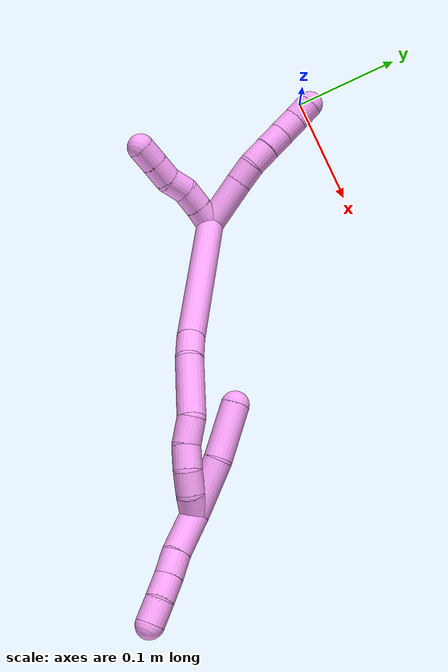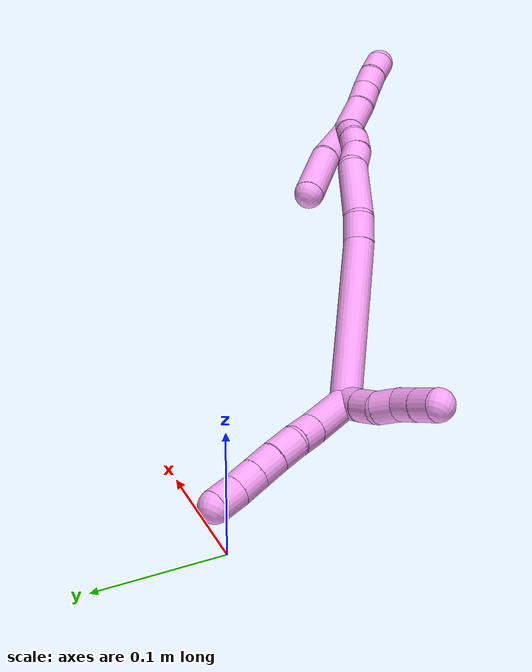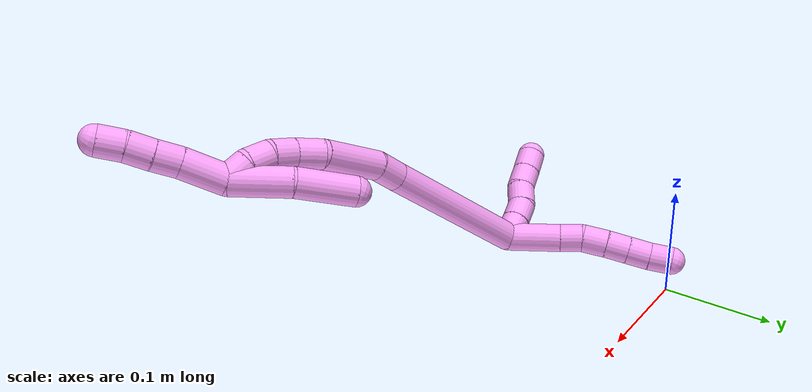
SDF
<sdf version="1.7">
 <world name="default">
  <model name="4">
   <static>0</static>
   <link name="4">
    <collision name="collision-cylinder-e_1_2_8">
     <pose>-0.003821 0.01152 -0.020359 -2.62669 -0.1619 0.597785</pose>
     <geometry><cylinder><radius>0.0125</radius><length>0.047405</length></cylinder></geometry>
     <surface>
      <friction><ode><mu>1.16</mu><mu2>1.16</mu2><slip1>0</slip1><slip2>0</slip2></ode></friction>
      <contact><ode><kp>1e+06</kp><kd>1</kd><max_vel>0</max_vel><min_depth>0.001</min_depth></ode></contact>
     </surface>
    </collision>
    <visual name="visual-cylinder-e_1_2_8">
     <pose>-0.003821 0.01152 -0.020359 -2.62669 -0.1619 0.597785</pose>
     <geometry><cylinder><radius>0.0125</radius><length>0.047405</length></cylinder></geometry>
     <material><ambient>1 0.65098 0.996078 1</ambient></material>
    </visual>
    <collision name="collision-cylinder-e_2_8_9">
     <pose>-0.009279 0.02841 -0.049194 -2.57673 -0.161839 0.545016</pose>
     <geometry><cylinder><radius>0.0125</radius><length>0.020332</length></cylinder></geometry>
     <surface>
      <friction><ode><mu>1.16</mu><mu2>1.16</mu2><slip1>0</slip1><slip2>0</slip2></ode></friction>
      <contact><ode><kp>1e+06</kp><kd>1</kd><max_vel>0</max_vel><min_depth>0.001</min_depth></ode></contact>
     </surface>
    </collision>
    <visual name="visual-cylinder-e_2_8_9">
     <pose>-0.009279 0.02841 -0.049194 -2.57673 -0.161839 0.545016</pose>
     <geometry><cylinder><radius>0.0125</radius><length>0.020332</length></cylinder></geometry>
     <material><ambient>1 0.65098 0.996078 1</ambient></material>
    </visual>
    <collision name="collision-cylinder-e_3_9_10">
     <pose>-0.010387 0.038623 -0.067537 -2.68549 0.048255 -0.207212</pose>
     <geometry><cylinder><radius>0.0125</radius><length>0.02201</length></cylinder></geometry>
     <surface>
      <friction><ode><mu>1.16</mu><mu2>1.16</mu2><slip1>0</slip1><slip2>0</slip2></ode></friction>
      <contact><ode><kp>1e+06</kp><kd>1</kd><max_vel>0</max_vel><min_depth>0.001</min_depth></ode></contact>
     </surface>
    </collision>
    <visual name="visual-cylinder-e_3_9_10">
     <pose>-0.010387 0.038623 -0.067537 -2.68549 0.048255 -0.207212</pose>
     <geometry><cylinder><radius>0.0125</radius><length>0.02201</length></cylinder></geometry>
     <material><ambient>1 0.65098 0.996078 1</ambient></material>
    </visual>
    <collision name="collision-cylinder-e_4_10_11">
     <pose>-0.009099 0.04751 -0.086614 -2.72758 0.075077 -0.353914</pose>
     <geometry><cylinder><radius>0.0125</radius><length>0.020173</length></cylinder></geometry>
     <surface>
      <friction><ode><mu>1.16</mu><mu2>1.16</mu2><slip1>0</slip1><slip2>0</slip2></ode></friction>
      <contact><ode><kp>1e+06</kp><kd>1</kd><max_vel>0</max_vel><min_depth>0.001</min_depth></ode></contact>
     </surface>
    </collision>
    <visual name="visual-cylinder-e_4_10_11">
     <pose>-0.009099 0.04751 -0.086614 -2.72758 0.075077 -0.353914</pose>
     <geometry><cylinder><radius>0.0125</radius><length>0.020173</length></cylinder></geometry>
     <material><ambient>1 0.65098 0.996078 1</ambient></material>
    </visual>
    <collision name="collision-cylinder-e_5_11_12">
     <pose>-0.007609 0.055563 -0.104965 -2.72857 0.073415 -0.347064</pose>
     <geometry><cylinder><radius>0.0125</radius><length>0.020018</length></cylinder></geometry>
     <surface>
      <friction><ode><mu>1.16</mu><mu2>1.16</mu2><slip1>0</slip1><slip2>0</slip2></ode></friction>
      <contact><ode><kp>1e+06</kp><kd>1</kd><max_vel>0</max_vel><min_depth>0.001</min_depth></ode></contact>
     </surface>
    </collision>
    <visual name="visual-cylinder-e_5_11_12">
     <pose>-0.007609 0.055563 -0.104965 -2.72857 0.073415 -0.347064</pose>
     <geometry><cylinder><radius>0.0125</radius><length>0.020018</length></cylinder></geometry>
     <material><ambient>1 0.65098 0.996078 1</ambient></material>
    </visual>
    <collision name="collision-cylinder-e_6_12_6">
     <pose>-0.006685 0.064277 -0.122963 -2.65303 0.018859 -0.075627</pose>
     <geometry><cylinder><radius>0.0125</radius><length>0.020062</length></cylinder></geometry>
     <surface>
      <friction><ode><mu>1.16</mu><mu2>1.16</mu2><slip1>0</slip1><slip2>0</slip2></ode></friction>
      <contact><ode><kp>1e+06</kp><kd>1</kd><max_vel>0</max_vel><min_depth>0.001</min_depth></ode></contact>
     </surface>
    </collision>
    <visual name="visual-cylinder-e_6_12_6">
     <pose>-0.006685 0.064277 -0.122963 -2.65303 0.018859 -0.075627</pose>
     <geometry><cylinder><radius>0.0125</radius><length>0.020062</length></cylinder></geometry>
     <material><ambient>1 0.65098 0.996078 1</ambient></material>
    </visual>
    <collision name="collision-cylinder-e_1_2_13">
     <pose>-0.00965 -0.000773 -0.002508 2.8425 -1.30529 -2.75236</pose>
     <geometry><cylinder><radius>0.0125</radius><length>0.02</length></cylinder></geometry>
     <surface>
      <friction><ode><mu>1.16</mu><mu2>1.16</mu2><slip1>0</slip1><slip2>0</slip2></ode></friction>
      <contact><ode><kp>1e+06</kp><kd>1</kd><max_vel>0</max_vel><min_depth>0.001</min_depth></ode></contact>
     </surface>
    </collision>
    <visual name="visual-cylinder-e_1_2_13">
     <pose>-0.00965 -0.000773 -0.002508 2.8425 -1.30529 -2.75236</pose>
     <geometry><cylinder><radius>0.0125</radius><length>0.02</length></cylinder></geometry>
     <material><ambient>1 0.65098 0.996078 1</ambient></material>
    </visual>
    <collision name="collision-cylinder-e_2_13_14">
     <pose>-0.029075 -0.002472 -0.006906 2.68636 -1.35869 -2.58295</pose>
     <geometry><cylinder><radius>0.0125</radius><length>0.02</length></cylinder></geometry>
     <surface>
      <friction><ode><mu>1.16</mu><mu2>1.16</mu2><slip1>0</slip1><slip2>0</slip2></ode></friction>
      <contact><ode><kp>1e+06</kp><kd>1</kd><max_vel>0</max_vel><min_depth>0.001</min_depth></ode></contact>
     </surface>
    </collision>
    <visual name="visual-cylinder-e_2_13_14">
     <pose>-0.029075 -0.002472 -0.006906 2.68636 -1.35869 -2.58295</pose>
     <geometry><cylinder><radius>0.0125</radius><length>0.02</length></cylinder></geometry>
     <material><ambient>1 0.65098 0.996078 1</ambient></material>
    </visual>
    <collision name="collision-cylinder-e_3_14_15">
     <pose>-0.048539 -0.005461 -0.007423 0.983259 -1.32032 -0.787984</pose>
     <geometry><cylinder><radius>0.0125</radius><length>0.02</length></cylinder></geometry>
     <surface>
      <friction><ode><mu>1.16</mu><mu2>1.16</mu2><slip1>0</slip1><slip2>0</slip2></ode></friction>
      <contact><ode><kp>1e+06</kp><kd>1</kd><max_vel>0</max_vel><min_depth>0.001</min_depth></ode></contact>
     </surface>
    </collision>
    <visual name="visual-cylinder-e_3_14_15">
     <pose>-0.048539 -0.005461 -0.007423 0.983259 -1.32032 -0.787984</pose>
     <geometry><cylinder><radius>0.0125</radius><length>0.02</length></cylinder></geometry>
     <material><ambient>1 0.65098 0.996078 1</ambient></material>
    </visual>
    <collision name="collision-cylinder-e_4_15_16">
     <pose>-0.068116 -0.008151 -0.007393 2.70469 -1.4219 -2.63702</pose>
     <geometry><cylinder><radius>0.0125</radius><length>0.02</length></cylinder></geometry>
     <surface>
      <friction><ode><mu>1.16</mu><mu2>1.16</mu2><slip1>0</slip1><slip2>0</slip2></ode></friction>
      <contact><ode><kp>1e+06</kp><kd>1</kd><max_vel>0</max_vel><min_depth>0.001</min_depth></ode></contact>
     </surface>
    </collision>
    <visual name="visual-cylinder-e_4_15_16">
     <pose>-0.068116 -0.008151 -0.007393 2.70469 -1.4219 -2.63702</pose>
     <geometry><cylinder><radius>0.0125</radius><length>0.02</length></cylinder></geometry>
     <material><ambient>1 0.65098 0.996078 1</ambient></material>
    </visual>
    <collision name="collision-cylinder-e_5_16_5">
     <pose>-0.087924 -0.009346 -0.009879 2.68105 -1.44293 -2.6207</pose>
     <geometry><cylinder><radius>0.0125</radius><length>0.02</length></cylinder></geometry>
     <surface>
      <friction><ode><mu>1.16</mu><mu2>1.16</mu2><slip1>0</slip1><slip2>0</slip2></ode></friction>
      <contact><ode><kp>1e+06</kp><kd>1</kd><max_vel>0</max_vel><min_depth>0.001</min_depth></ode></contact>
     </surface>
    </collision>
    <visual name="visual-cylinder-e_5_16_5">
     <pose>-0.087924 -0.009346 -0.009879 2.68105 -1.44293 -2.6207</pose>
     <geometry><cylinder><radius>0.0125</radius><length>0.02</length></cylinder></geometry>
     <material><ambient>1 0.65098 0.996078 1</ambient></material>
    </visual>
    <collision name="collision-cylinder-e_1_2_17">
     <pose>0.00623 0.019172 0.065149 -0.286197 0.091485 -0.01319</pose>
     <geometry><cylinder><radius>0.0125</radius><length>0.136393</length></cylinder></geometry>
     <surface>
      <friction><ode><mu>1.16</mu><mu2>1.16</mu2><slip1>0</slip1><slip2>0</slip2></ode></friction>
      <contact><ode><kp>1e+06</kp><kd>1</kd><max_vel>0</max_vel><min_depth>0.001</min_depth></ode></contact>
     </surface>
    </collision>
    <visual name="visual-cylinder-e_1_2_17">
     <pose>0.00623 0.019172 0.065149 -0.286197 0.091485 -0.01319</pose>
     <geometry><cylinder><radius>0.0125</radius><length>0.136393</length></cylinder></geometry>
     <material><ambient>1 0.65098 0.996078 1</ambient></material>
    </visual>
    <collision name="collision-cylinder-e_2_17_18">
     <pose>0.013899 0.042532 0.141081 -0.370465 0.123673 -0.023202</pose>
     <geometry><cylinder><radius>0.0125</radius><length>0.023314</length></cylinder></geometry>
     <surface>
      <friction><ode><mu>1.16</mu><mu2>1.16</mu2><slip1>0</slip1><slip2>0</slip2></ode></friction>
      <contact><ode><kp>1e+06</kp><kd>1</kd><max_vel>0</max_vel><min_depth>0.001</min_depth></ode></contact>
     </surface>
    </collision>
    <visual name="visual-cylinder-e_2_17_18">
     <pose>0.013899 0.042532 0.141081 -0.370465 0.123673 -0.023202</pose>
     <geometry><cylinder><radius>0.0125</radius><length>0.023314</length></cylinder></geometry>
     <material><ambient>1 0.65098 0.996078 1</ambient></material>
    </visual>
    <collision name="collision-cylinder-e_3_18_19">
     <pose>0.024877 0.053756 0.176737 -0.27567 0.353605 -0.049558</pose>
     <geometry><cylinder><radius>0.0125</radius><length>0.055105</length></cylinder></geometry>
     <surface>
      <friction><ode><mu>1.16</mu><mu2>1.16</mu2><slip1>0</slip1><slip2>0</slip2></ode></friction>
      <contact><ode><kp>1e+06</kp><kd>1</kd><max_vel>0</max_vel><min_depth>0.001</min_depth></ode></contact>
     </surface>
    </collision>
    <visual name="visual-cylinder-e_3_18_19">
     <pose>0.024877 0.053756 0.176737 -0.27567 0.353605 -0.049558</pose>
     <geometry><cylinder><radius>0.0125</radius><length>0.055105</length></cylinder></geometry>
     <material><ambient>1 0.65098 0.996078 1</ambient></material>
    </visual>
    <collision name="collision-cylinder-e_4_19_20">
     <pose>0.038851 0.059816 0.2126 0.088489 0.381965 0.017119</pose>
     <geometry><cylinder><radius>0.0125</radius><length>0.023783</length></cylinder></geometry>
     <surface>
      <friction><ode><mu>1.16</mu><mu2>1.16</mu2><slip1>0</slip1><slip2>0</slip2></ode></friction>
      <contact><ode><kp>1e+06</kp><kd>1</kd><max_vel>0</max_vel><min_depth>0.001</min_depth></ode></contact>
     </surface>
    </collision>
    <visual name="visual-cylinder-e_4_19_20">
     <pose>0.038851 0.059816 0.2126 0.088489 0.381965 0.017119</pose>
     <geometry><cylinder><radius>0.0125</radius><length>0.023783</length></cylinder></geometry>
     <material><ambient>1 0.65098 0.996078 1</ambient></material>
    </visual>
    <collision name="collision-cylinder-e_5_20_21">
     <pose>0.048791 0.059925 0.232522 -0.120859 0.54934 -0.034095</pose>
     <geometry><cylinder><radius>0.0125</radius><length>0.021095</length></cylinder></geometry>
     <surface>
      <friction><ode><mu>1.16</mu><mu2>1.16</mu2><slip1>0</slip1><slip2>0</slip2></ode></friction>
      <contact><ode><kp>1e+06</kp><kd>1</kd><max_vel>0</max_vel><min_depth>0.001</min_depth></ode></contact>
     </surface>
    </collision>
    <visual name="visual-cylinder-e_5_20_21">
     <pose>0.048791 0.059925 0.232522 -0.120859 0.54934 -0.034095</pose>
     <geometry><cylinder><radius>0.0125</radius><length>0.021095</length></cylinder></geometry>
     <material><ambient>1 0.65098 0.996078 1</ambient></material>
    </visual>
    <collision name="collision-cylinder-e_6_21_22">
     <pose>0.06141 0.060275 0.248469 0.104334 0.78942 0.043495</pose>
     <geometry><cylinder><radius>0.0125</radius><length>0.020037</length></cylinder></geometry>
     <surface>
      <friction><ode><mu>1.16</mu><mu2>1.16</mu2><slip1>0</slip1><slip2>0</slip2></ode></friction>
      <contact><ode><kp>1e+06</kp><kd>1</kd><max_vel>0</max_vel><min_depth>0.001</min_depth></ode></contact>
     </surface>
    </collision>
    <visual name="visual-cylinder-e_6_21_22">
     <pose>0.06141 0.060275 0.248469 0.104334 0.78942 0.043495</pose>
     <geometry><cylinder><radius>0.0125</radius><length>0.020037</length></cylinder></geometry>
     <material><ambient>1 0.65098 0.996078 1</ambient></material>
    </visual>
    <collision name="collision-cylinder-e_7_22_1">
     <pose>0.077086 0.056988 0.260272 0.490051 1.00617 0.273496</pose>
     <geometry><cylinder><radius>0.0125</radius><length>0.020272</length></cylinder></geometry>
     <surface>
      <friction><ode><mu>1.16</mu><mu2>1.16</mu2><slip1>0</slip1><slip2>0</slip2></ode></friction>
      <contact><ode><kp>1e+06</kp><kd>1</kd><max_vel>0</max_vel><min_depth>0.001</min_depth></ode></contact>
     </surface>
    </collision>
    <visual name="visual-cylinder-e_7_22_1">
     <pose>0.077086 0.056988 0.260272 0.490051 1.00617 0.273496</pose>
     <geometry><cylinder><radius>0.0125</radius><length>0.020272</length></cylinder></geometry>
     <material><ambient>1 0.65098 0.996078 1</ambient></material>
    </visual>
    <collision name="collision-cylinder-e_1_1_23">
     <pose>0.085988 0.053633 0.283619 0.043183 0.01827 0.000395</pose>
     <geometry><cylinder><radius>0.0125</radius><length>0.037165</length></cylinder></geometry>
     <surface>
      <friction><ode><mu>1.16</mu><mu2>1.16</mu2><slip1>0</slip1><slip2>0</slip2></ode></friction>
      <contact><ode><kp>1e+06</kp><kd>1</kd><max_vel>0</max_vel><min_depth>0.001</min_depth></ode></contact>
     </surface>
    </collision>
    <visual name="visual-cylinder-e_1_1_23">
     <pose>0.085988 0.053633 0.283619 0.043183 0.01827 0.000395</pose>
     <geometry><cylinder><radius>0.0125</radius><length>0.037165</length></cylinder></geometry>
     <material><ambient>1 0.65098 0.996078 1</ambient></material>
    </visual>
    <collision name="collision-cylinder-e_2_23_24">
     <pose>0.087925 0.05284 0.312552 -0.000946 0.152795 -7.2e-05</pose>
     <geometry><cylinder><radius>0.0125</radius><length>0.020985</length></cylinder></geometry>
     <surface>
      <friction><ode><mu>1.16</mu><mu2>1.16</mu2><slip1>0</slip1><slip2>0</slip2></ode></friction>
      <contact><ode><kp>1e+06</kp><kd>1</kd><max_vel>0</max_vel><min_depth>0.001</min_depth></ode></contact>
     </surface>
    </collision>
    <visual name="visual-cylinder-e_2_23_24">
     <pose>0.087925 0.05284 0.312552 -0.000946 0.152795 -7.2e-05</pose>
     <geometry><cylinder><radius>0.0125</radius><length>0.020985</length></cylinder></geometry>
     <material><ambient>1 0.65098 0.996078 1</ambient></material>
    </visual>
    <collision name="collision-cylinder-e_3_24_25">
     <pose>0.090438 0.052695 0.333183 0.015151 0.089034 0.000675</pose>
     <geometry><cylinder><radius>0.0125</radius><length>0.020605</length></cylinder></geometry>
     <surface>
      <friction><ode><mu>1.16</mu><mu2>1.16</mu2><slip1>0</slip1><slip2>0</slip2></ode></friction>
      <contact><ode><kp>1e+06</kp><kd>1</kd><max_vel>0</max_vel><min_depth>0.001</min_depth></ode></contact>
     </surface>
    </collision>
    <visual name="visual-cylinder-e_3_24_25">
     <pose>0.090438 0.052695 0.333183 0.015151 0.089034 0.000675</pose>
     <geometry><cylinder><radius>0.0125</radius><length>0.020605</length></cylinder></geometry>
     <material><ambient>1 0.65098 0.996078 1</ambient></material>
    </visual>
    <collision name="collision-cylinder-e_4_25_4">
     <pose>0.093188 0.051083 0.353804 0.139682 0.173521 0.012169</pose>
     <geometry><cylinder><radius>0.0125</radius><length>0.021245</length></cylinder></geometry>
     <surface>
      <friction><ode><mu>1.16</mu><mu2>1.16</mu2><slip1>0</slip1><slip2>0</slip2></ode></friction>
      <contact><ode><kp>1e+06</kp><kd>1</kd><max_vel>0</max_vel><min_depth>0.001</min_depth></ode></contact>
     </surface>
    </collision>
    <visual name="visual-cylinder-e_4_25_4">
     <pose>0.093188 0.051083 0.353804 0.139682 0.173521 0.012169</pose>
     <geometry><cylinder><radius>0.0125</radius><length>0.021245</length></cylinder></geometry>
     <material><ambient>1 0.65098 0.996078 1</ambient></material>
    </visual>
    <collision name="collision-cylinder-e_1_1_26">
     <pose>0.079029 0.061797 0.242123 -2.83097 -0.268214 1.42247</pose>
     <geometry><cylinder><radius>0.0125</radius><length>0.049959</length></cylinder></geometry>
     <surface>
      <friction><ode><mu>1.16</mu><mu2>1.16</mu2><slip1>0</slip1><slip2>0</slip2></ode></friction>
      <contact><ode><kp>1e+06</kp><kd>1</kd><max_vel>0</max_vel><min_depth>0.001</min_depth></ode></contact>
     </surface>
    </collision>
    <visual name="visual-cylinder-e_1_1_26">
     <pose>0.079029 0.061797 0.242123 -2.83097 -0.268214 1.42247</pose>
     <geometry><cylinder><radius>0.0125</radius><length>0.049959</length></cylinder></geometry>
     <material><ambient>1 0.65098 0.996078 1</ambient></material>
    </visual>
    <collision name="collision-cylinder-e_2_26_3">
     <pose>0.06647 0.071629 0.19501 -3.03979 -0.23967 2.3411</pose>
     <geometry><cylinder><radius>0.0125</radius><length>0.050041</length></cylinder></geometry>
     <surface>
      <friction><ode><mu>1.16</mu><mu2>1.16</mu2><slip1>0</slip1><slip2>0</slip2></ode></friction>
      <contact><ode><kp>1e+06</kp><kd>1</kd><max_vel>0</max_vel><min_depth>0.001</min_depth></ode></contact>
     </surface>
    </collision>
    <visual name="visual-cylinder-e_2_26_3">
     <pose>0.06647 0.071629 0.19501 -3.03979 -0.23967 2.3411</pose>
     <geometry><cylinder><radius>0.0125</radius><length>0.050041</length></cylinder></geometry>
     <material><ambient>1 0.65098 0.996078 1</ambient></material>
    </visual>
    <collision name="collision-sphere-3">
     <pose>0.06053 0.074099 0.170831 0 -0 0</pose>
     <geometry><sphere><radius>0.0125</radius></sphere></geometry>
     <surface>
      <friction><ode><mu>1.16</mu><mu2>1.16</mu2><slip1>0</slip1><slip2>0</slip2></ode></friction>
      <contact><ode><kp>1e+06</kp><kd>1</kd><max_vel>0</max_vel><min_depth>0.001</min_depth></ode></contact>
     </surface>
    </collision>
    <visual name="visual-sphere-3">
     <pose>0.06053 0.074099 0.170831 0 -0 0</pose>
     <geometry><sphere><radius>0.0125</radius></sphere></geometry>
     <material><ambient>1 0.65098 0.996078 1</ambient></material>
    </visual>
    <collision name="collision-sphere-26">
     <pose>0.072409 0.069159 0.219189 0 -0 0</pose>
     <geometry><sphere><radius>0.0125</radius></sphere></geometry>
     <surface>
      <friction><ode><mu>1.16</mu><mu2>1.16</mu2><slip1>0</slip1><slip2>0</slip2></ode></friction>
      <contact><ode><kp>1e+06</kp><kd>1</kd><max_vel>0</max_vel><min_depth>0.001</min_depth></ode></contact>
     </surface>
    </collision>
    <visual name="visual-sphere-26">
     <pose>0.072409 0.069159 0.219189 0 -0 0</pose>
     <geometry><sphere><radius>0.0125</radius></sphere></geometry>
     <material><ambient>1 0.65098 0.996078 1</ambient></material>
    </visual>
    <collision name="collision-sphere-4">
     <pose>0.095022 0.049626 0.364165 0 -0 0</pose>
     <geometry><sphere><radius>0.0125</radius></sphere></geometry>
     <surface>
      <friction><ode><mu>1.16</mu><mu2>1.16</mu2><slip1>0</slip1><slip2>0</slip2></ode></friction>
      <contact><ode><kp>1e+06</kp><kd>1</kd><max_vel>0</max_vel><min_depth>0.001</min_depth></ode></contact>
     </surface>
    </collision>
    <visual name="visual-sphere-4">
     <pose>0.095022 0.049626 0.364165 0 -0 0</pose>
     <geometry><sphere><radius>0.0125</radius></sphere></geometry>
     <material><ambient>1 0.65098 0.996078 1</ambient></material>
    </visual>
    <collision name="collision-sphere-25">
     <pose>0.091354 0.052539 0.343443 0 -0 0</pose>
     <geometry><sphere><radius>0.0125</radius></sphere></geometry>
     <surface>
      <friction><ode><mu>1.16</mu><mu2>1.16</mu2><slip1>0</slip1><slip2>0</slip2></ode></friction>
      <contact><ode><kp>1e+06</kp><kd>1</kd><max_vel>0</max_vel><min_depth>0.001</min_depth></ode></contact>
     </surface>
    </collision>
    <visual name="visual-sphere-25">
     <pose>0.091354 0.052539 0.343443 0 -0 0</pose>
     <geometry><sphere><radius>0.0125</radius></sphere></geometry>
     <material><ambient>1 0.65098 0.996078 1</ambient></material>
    </visual>
    <collision name="collision-sphere-24">
     <pose>0.089522 0.05285 0.322922 0 -0 0</pose>
     <geometry><sphere><radius>0.0125</radius></sphere></geometry>
     <surface>
      <friction><ode><mu>1.16</mu><mu2>1.16</mu2><slip1>0</slip1><slip2>0</slip2></ode></friction>
      <contact><ode><kp>1e+06</kp><kd>1</kd><max_vel>0</max_vel><min_depth>0.001</min_depth></ode></contact>
     </surface>
    </collision>
    <visual name="visual-sphere-24">
     <pose>0.089522 0.05285 0.322922 0 -0 0</pose>
     <geometry><sphere><radius>0.0125</radius></sphere></geometry>
     <material><ambient>1 0.65098 0.996078 1</ambient></material>
    </visual>
    <collision name="collision-sphere-23">
     <pose>0.086328 0.052831 0.302181 0 -0 0</pose>
     <geometry><sphere><radius>0.0125</radius></sphere></geometry>
     <surface>
      <friction><ode><mu>1.16</mu><mu2>1.16</mu2><slip1>0</slip1><slip2>0</slip2></ode></friction>
      <contact><ode><kp>1e+06</kp><kd>1</kd><max_vel>0</max_vel><min_depth>0.001</min_depth></ode></contact>
     </surface>
    </collision>
    <visual name="visual-sphere-23">
     <pose>0.086328 0.052831 0.302181 0 -0 0</pose>
     <geometry><sphere><radius>0.0125</radius></sphere></geometry>
     <material><ambient>1 0.65098 0.996078 1</ambient></material>
    </visual>
    <collision name="collision-sphere-1">
     <pose>0.085649 0.054435 0.265057 0 -0 0</pose>
     <geometry><sphere><radius>0.0125</radius></sphere></geometry>
     <surface>
      <friction><ode><mu>1.16</mu><mu2>1.16</mu2><slip1>0</slip1><slip2>0</slip2></ode></friction>
      <contact><ode><kp>1e+06</kp><kd>1</kd><max_vel>0</max_vel><min_depth>0.001</min_depth></ode></contact>
     </surface>
    </collision>
    <visual name="visual-sphere-1">
     <pose>0.085649 0.054435 0.265057 0 -0 0</pose>
     <geometry><sphere><radius>0.0125</radius></sphere></geometry>
     <material><ambient>1 0.65098 0.996078 1</ambient></material>
    </visual>
    <collision name="collision-sphere-22">
     <pose>0.068523 0.05954 0.255486 0 -0 0</pose>
     <geometry><sphere><radius>0.0125</radius></sphere></geometry>
     <surface>
      <friction><ode><mu>1.16</mu><mu2>1.16</mu2><slip1>0</slip1><slip2>0</slip2></ode></friction>
      <contact><ode><kp>1e+06</kp><kd>1</kd><max_vel>0</max_vel><min_depth>0.001</min_depth></ode></contact>
     </surface>
    </collision>
    <visual name="visual-sphere-22">
     <pose>0.068523 0.05954 0.255486 0 -0 0</pose>
     <geometry><sphere><radius>0.0125</radius></sphere></geometry>
     <material><ambient>1 0.65098 0.996078 1</ambient></material>
    </visual>
    <collision name="collision-sphere-21">
     <pose>0.054298 0.06101 0.241452 0 -0 0</pose>
     <geometry><sphere><radius>0.0125</radius></sphere></geometry>
     <surface>
      <friction><ode><mu>1.16</mu><mu2>1.16</mu2><slip1>0</slip1><slip2>0</slip2></ode></friction>
      <contact><ode><kp>1e+06</kp><kd>1</kd><max_vel>0</max_vel><min_depth>0.001</min_depth></ode></contact>
     </surface>
    </collision>
    <visual name="visual-sphere-21">
     <pose>0.054298 0.06101 0.241452 0 -0 0</pose>
     <geometry><sphere><radius>0.0125</radius></sphere></geometry>
     <material><ambient>1 0.65098 0.996078 1</ambient></material>
    </visual>
    <collision name="collision-sphere-12">
     <pose>-0.006874 0.05957 -0.114107 0 -0 0</pose>
     <geometry><sphere><radius>0.0125</radius></sphere></geometry>
     <surface>
      <friction><ode><mu>1.16</mu><mu2>1.16</mu2><slip1>0</slip1><slip2>0</slip2></ode></friction>
      <contact><ode><kp>1e+06</kp><kd>1</kd><max_vel>0</max_vel><min_depth>0.001</min_depth></ode></contact>
     </surface>
    </collision>
    <visual name="visual-sphere-12">
     <pose>-0.006874 0.05957 -0.114107 0 -0 0</pose>
     <geometry><sphere><radius>0.0125</radius></sphere></geometry>
     <material><ambient>1 0.65098 0.996078 1</ambient></material>
    </visual>
    <collision name="collision-sphere-11">
     <pose>-0.008343 0.051556 -0.095822 0 -0 0</pose>
     <geometry><sphere><radius>0.0125</radius></sphere></geometry>
     <surface>
      <friction><ode><mu>1.16</mu><mu2>1.16</mu2><slip1>0</slip1><slip2>0</slip2></ode></friction>
      <contact><ode><kp>1e+06</kp><kd>1</kd><max_vel>0</max_vel><min_depth>0.001</min_depth></ode></contact>
     </surface>
    </collision>
    <visual name="visual-sphere-11">
     <pose>-0.008343 0.051556 -0.095822 0 -0 0</pose>
     <geometry><sphere><radius>0.0125</radius></sphere></geometry>
     <material><ambient>1 0.65098 0.996078 1</ambient></material>
    </visual>
    <collision name="collision-sphere-10">
     <pose>-0.009856 0.043464 -0.077406 0 -0 0</pose>
     <geometry><sphere><radius>0.0125</radius></sphere></geometry>
     <surface>
      <friction><ode><mu>1.16</mu><mu2>1.16</mu2><slip1>0</slip1><slip2>0</slip2></ode></friction>
      <contact><ode><kp>1e+06</kp><kd>1</kd><max_vel>0</max_vel><min_depth>0.001</min_depth></ode></contact>
     </surface>
    </collision>
    <visual name="visual-sphere-10">
     <pose>-0.009856 0.043464 -0.077406 0 -0 0</pose>
     <geometry><sphere><radius>0.0125</radius></sphere></geometry>
     <material><ambient>1 0.65098 0.996078 1</ambient></material>
    </visual>
    <collision name="collision-sphere-9">
     <pose>-0.010918 0.033781 -0.057668 0 -0 0</pose>
     <geometry><sphere><radius>0.0125</radius></sphere></geometry>
     <surface>
      <friction><ode><mu>1.16</mu><mu2>1.16</mu2><slip1>0</slip1><slip2>0</slip2></ode></friction>
      <contact><ode><kp>1e+06</kp><kd>1</kd><max_vel>0</max_vel><min_depth>0.001</min_depth></ode></contact>
     </surface>
    </collision>
    <visual name="visual-sphere-9">
     <pose>-0.010918 0.033781 -0.057668 0 -0 0</pose>
     <geometry><sphere><radius>0.0125</radius></sphere></geometry>
     <material><ambient>1 0.65098 0.996078 1</ambient></material>
    </visual>
    <collision name="collision-sphere-2">
     <geometry><sphere><radius>0.0125</radius></sphere></geometry>
     <surface>
      <friction><ode><mu>1.16</mu><mu2>1.16</mu2><slip1>0</slip1><slip2>0</slip2></ode></friction>
      <contact><ode><kp>1e+06</kp><kd>1</kd><max_vel>0</max_vel><min_depth>0.001</min_depth></ode></contact>
     </surface>
    </collision>
    <visual name="visual-sphere-2">
     <geometry><sphere><radius>0.0125</radius></sphere></geometry>
     <material><ambient>1 0.65098 0.996078 1</ambient></material>
    </visual>
    <collision name="collision-sphere-19">
     <pose>0.034418 0.060791 0.201609 0 -0 0</pose>
     <geometry><sphere><radius>0.0125</radius></sphere></geometry>
     <surface>
      <friction><ode><mu>1.16</mu><mu2>1.16</mu2><slip1>0</slip1><slip2>0</slip2></ode></friction>
      <contact><ode><kp>1e+06</kp><kd>1</kd><max_vel>0</max_vel><min_depth>0.001</min_depth></ode></contact>
     </surface>
    </collision>
    <visual name="visual-sphere-19">
     <pose>0.034418 0.060791 0.201609 0 -0 0</pose>
     <geometry><sphere><radius>0.0125</radius></sphere></geometry>
     <material><ambient>1 0.65098 0.996078 1</ambient></material>
    </visual>
    <collision name="collision-sphere-8">
     <pose>-0.007641 0.023039 -0.040719 0 -0 0</pose>
     <geometry><sphere><radius>0.0125</radius></sphere></geometry>
     <surface>
      <friction><ode><mu>1.16</mu><mu2>1.16</mu2><slip1>0</slip1><slip2>0</slip2></ode></friction>
      <contact><ode><kp>1e+06</kp><kd>1</kd><max_vel>0</max_vel><min_depth>0.001</min_depth></ode></contact>
     </surface>
    </collision>
    <visual name="visual-sphere-8">
     <pose>-0.007641 0.023039 -0.040719 0 -0 0</pose>
     <geometry><sphere><radius>0.0125</radius></sphere></geometry>
     <material><ambient>1 0.65098 0.996078 1</ambient></material>
    </visual>
    <collision name="collision-sphere-6">
     <pose>-0.006496 0.068984 -0.131819 0 -0 0</pose>
     <geometry><sphere><radius>0.0125</radius></sphere></geometry>
     <surface>
      <friction><ode><mu>1.16</mu><mu2>1.16</mu2><slip1>0</slip1><slip2>0</slip2></ode></friction>
      <contact><ode><kp>1e+06</kp><kd>1</kd><max_vel>0</max_vel><min_depth>0.001</min_depth></ode></contact>
     </surface>
    </collision>
    <visual name="visual-sphere-6">
     <pose>-0.006496 0.068984 -0.131819 0 -0 0</pose>
     <geometry><sphere><radius>0.0125</radius></sphere></geometry>
     <material><ambient>1 0.65098 0.996078 1</ambient></material>
    </visual>
    <collision name="collision-sphere-13">
     <pose>-0.019299 -0.001546 -0.005015 0 -0 0</pose>
     <geometry><sphere><radius>0.0125</radius></sphere></geometry>
     <surface>
      <friction><ode><mu>1.16</mu><mu2>1.16</mu2><slip1>0</slip1><slip2>0</slip2></ode></friction>
      <contact><ode><kp>1e+06</kp><kd>1</kd><max_vel>0</max_vel><min_depth>0.001</min_depth></ode></contact>
     </surface>
    </collision>
    <visual name="visual-sphere-13">
     <pose>-0.019299 -0.001546 -0.005015 0 -0 0</pose>
     <geometry><sphere><radius>0.0125</radius></sphere></geometry>
     <material><ambient>1 0.65098 0.996078 1</ambient></material>
    </visual>
    <collision name="collision-sphere-14">
     <pose>-0.038851 -0.003398 -0.008797 0 -0 0</pose>
     <geometry><sphere><radius>0.0125</radius></sphere></geometry>
     <surface>
      <friction><ode><mu>1.16</mu><mu2>1.16</mu2><slip1>0</slip1><slip2>0</slip2></ode></friction>
      <contact><ode><kp>1e+06</kp><kd>1</kd><max_vel>0</max_vel><min_depth>0.001</min_depth></ode></contact>
     </surface>
    </collision>
    <visual name="visual-sphere-14">
     <pose>-0.038851 -0.003398 -0.008797 0 -0 0</pose>
     <geometry><sphere><radius>0.0125</radius></sphere></geometry>
     <material><ambient>1 0.65098 0.996078 1</ambient></material>
    </visual>
    <collision name="collision-sphere-15">
     <pose>-0.058227 -0.007524 -0.006049 0 -0 0</pose>
     <geometry><sphere><radius>0.0125</radius></sphere></geometry>
     <surface>
      <friction><ode><mu>1.16</mu><mu2>1.16</mu2><slip1>0</slip1><slip2>0</slip2></ode></friction>
      <contact><ode><kp>1e+06</kp><kd>1</kd><max_vel>0</max_vel><min_depth>0.001</min_depth></ode></contact>
     </surface>
    </collision>
    <visual name="visual-sphere-15">
     <pose>-0.058227 -0.007524 -0.006049 0 -0 0</pose>
     <geometry><sphere><radius>0.0125</radius></sphere></geometry>
     <material><ambient>1 0.65098 0.996078 1</ambient></material>
    </visual>
    <collision name="collision-sphere-16">
     <pose>-0.078006 -0.008779 -0.008737 0 -0 0</pose>
     <geometry><sphere><radius>0.0125</radius></sphere></geometry>
     <surface>
      <friction><ode><mu>1.16</mu><mu2>1.16</mu2><slip1>0</slip1><slip2>0</slip2></ode></friction>
      <contact><ode><kp>1e+06</kp><kd>1</kd><max_vel>0</max_vel><min_depth>0.001</min_depth></ode></contact>
     </surface>
    </collision>
    <visual name="visual-sphere-16">
     <pose>-0.078006 -0.008779 -0.008737 0 -0 0</pose>
     <geometry><sphere><radius>0.0125</radius></sphere></geometry>
     <material><ambient>1 0.65098 0.996078 1</ambient></material>
    </visual>
    <collision name="collision-sphere-5">
     <pose>-0.097842 -0.009912 -0.011022 0 -0 0</pose>
     <geometry><sphere><radius>0.0125</radius></sphere></geometry>
     <surface>
      <friction><ode><mu>1.16</mu><mu2>1.16</mu2><slip1>0</slip1><slip2>0</slip2></ode></friction>
      <contact><ode><kp>1e+06</kp><kd>1</kd><max_vel>0</max_vel><min_depth>0.001</min_depth></ode></contact>
     </surface>
    </collision>
    <visual name="visual-sphere-5">
     <pose>-0.097842 -0.009912 -0.011022 0 -0 0</pose>
     <geometry><sphere><radius>0.0125</radius></sphere></geometry>
     <material><ambient>1 0.65098 0.996078 1</ambient></material>
    </visual>
    <collision name="collision-sphere-17">
     <pose>0.012461 0.038344 0.130298 0 -0 0</pose>
     <geometry><sphere><radius>0.0125</radius></sphere></geometry>
     <surface>
      <friction><ode><mu>1.16</mu><mu2>1.16</mu2><slip1>0</slip1><slip2>0</slip2></ode></friction>
      <contact><ode><kp>1e+06</kp><kd>1</kd><max_vel>0</max_vel><min_depth>0.001</min_depth></ode></contact>
     </surface>
    </collision>
    <visual name="visual-sphere-17">
     <pose>0.012461 0.038344 0.130298 0 -0 0</pose>
     <geometry><sphere><radius>0.0125</radius></sphere></geometry>
     <material><ambient>1 0.65098 0.996078 1</ambient></material>
    </visual>
    <collision name="collision-sphere-18">
     <pose>0.015337 0.04672 0.151865 0 -0 0</pose>
     <geometry><sphere><radius>0.0125</radius></sphere></geometry>
     <surface>
      <friction><ode><mu>1.16</mu><mu2>1.16</mu2><slip1>0</slip1><slip2>0</slip2></ode></friction>
      <contact><ode><kp>1e+06</kp><kd>1</kd><max_vel>0</max_vel><min_depth>0.001</min_depth></ode></contact>
     </surface>
    </collision>
    <visual name="visual-sphere-18">
     <pose>0.015337 0.04672 0.151865 0 -0 0</pose>
     <geometry><sphere><radius>0.0125</radius></sphere></geometry>
     <material><ambient>1 0.65098 0.996078 1</ambient></material>
    </visual>
    <collision name="collision-sphere-20">
     <pose>0.043283 0.058841 0.223592 0 -0 0</pose>
     <geometry><sphere><radius>0.0125</radius></sphere></geometry>
     <surface>
      <friction><ode><mu>1.16</mu><mu2>1.16</mu2><slip1>0</slip1><slip2>0</slip2></ode></friction>
      <contact><ode><kp>1e+06</kp><kd>1</kd><max_vel>0</max_vel><min_depth>0.001</min_depth></ode></contact>
     </surface>
    </collision>
    <visual name="visual-sphere-20">
     <pose>0.043283 0.058841 0.223592 0 -0 0</pose>
     <geometry><sphere><radius>0.0125</radius></sphere></geometry>
     <material><ambient>1 0.65098 0.996078 1</ambient></material>
    </visual>
    <inertial>
     <pose>0.023353 0.037831 0.113356 0 -0 0</pose>
     <mass>0.75</mass>
     <inertia>
      <ixx>0.000276</ixx>
      <ixy>0</ixy>
      <ixz>0</ixz>
      <iyy>0.000276</iyy>
      <iyz>0</iyz>
      <izz>-8.3e-05</izz>
     </inertia>
    </inertial>
   </link>
   <pose>0.072527 -0.128449 0.051535 0.947479 0.548934 0.336204</pose>
  </model>
 </world>
</sdf>
